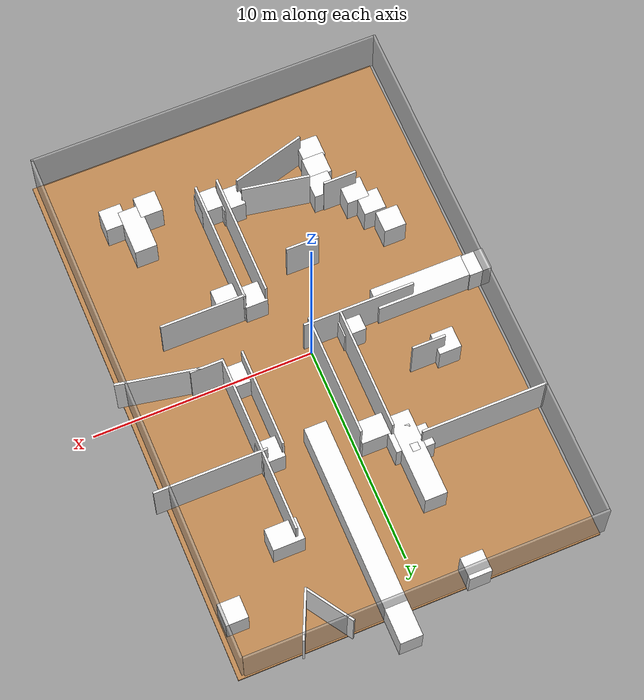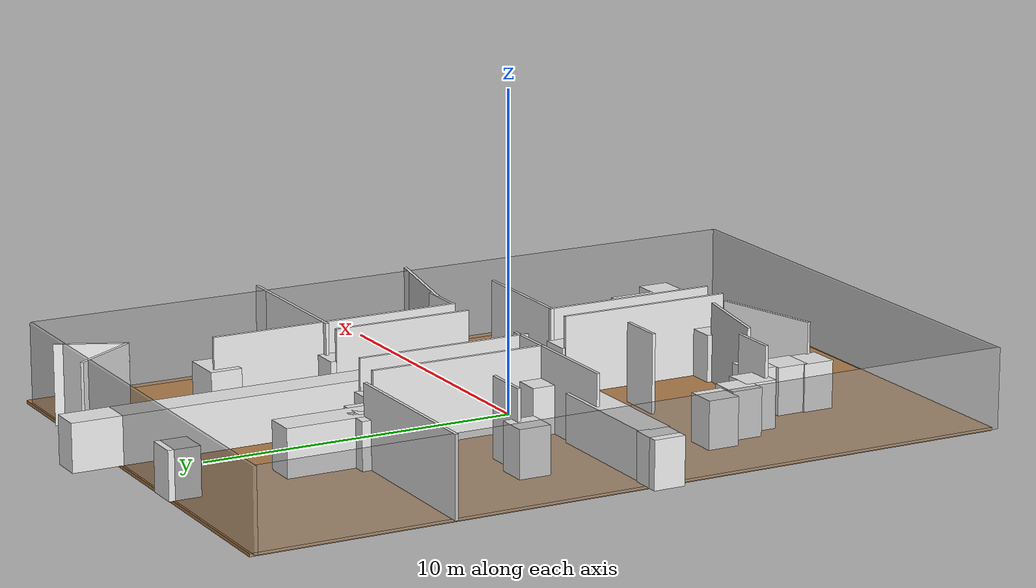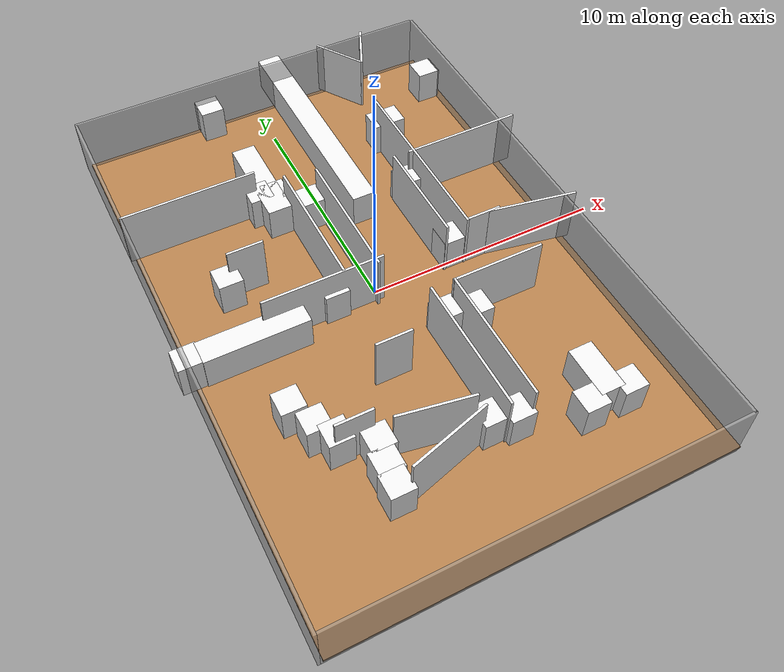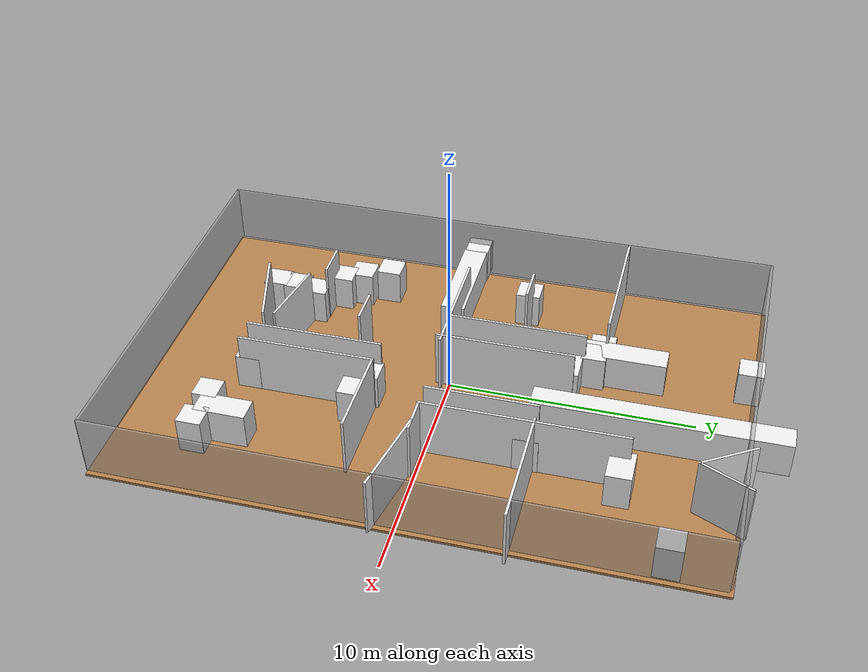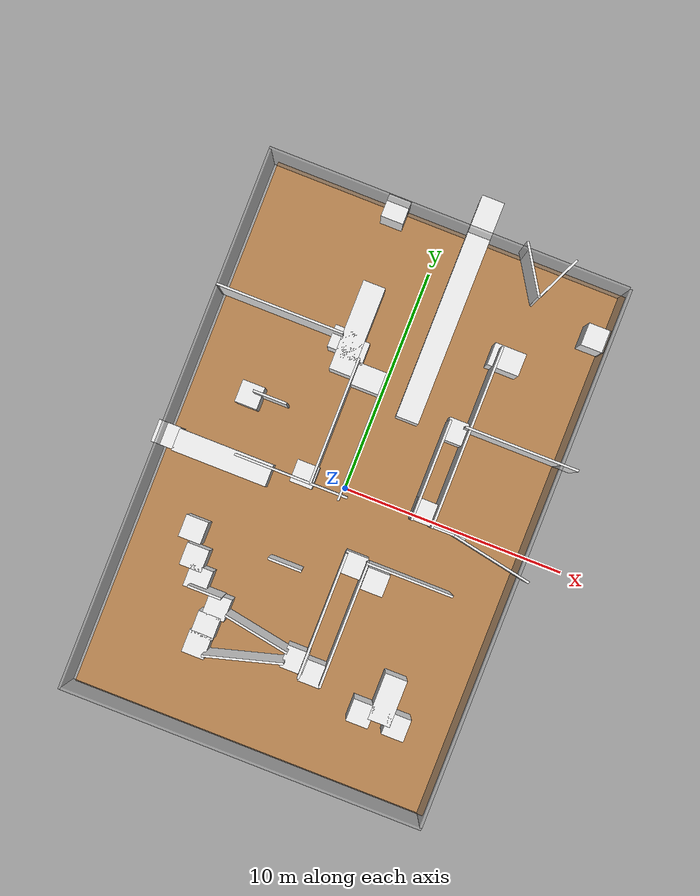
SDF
<sdf version="1.6">
 <world name="default">
  <light name="sun" type="directional">
   <pose>0 0 10 0 -0 0</pose>
   <diffuse>0.8 0.8 0.8 1</diffuse>
   <specular>0.2 0.2 0.2 1</specular>
   <attenuation>
    <range>1000</range>
    <constant>0.9</constant>
    <linear>0.01</linear>
    <quadratic>0.001</quadratic>
   </attenuation>
   <direction>-0.5 0.1 -0.9</direction>
  </light>
  <physics name="default_physics" default="0" type="ode">
   <real_time_update_rate>1000</real_time_update_rate>
   <max_step_size>0.001</max_step_size>
   <real_time_factor>1</real_time_factor>
   <ode>
    <solver>
     <type>quick</type>
     <iters>150</iters>
     <precon_iters>0</precon_iters>
     <sor>1.4</sor>
     <use_dynamic_moi_rescaling>1</use_dynamic_moi_rescaling>
    </solver>
    <constraints>
     <cfm>1e-05</cfm>
     <erp>0.2</erp>
     <contact_max_correcting_vel>2000</contact_max_correcting_vel>
     <contact_surface_layer>0.01</contact_surface_layer>
    </constraints>
   </ode>
  </physics>
  <model name="box_1">
   <pose>0.05 -12.05 1.25 0 -0 0</pose>
   <static>1</static>
   <link name="link">
    <collision name="collision"><geometry><box><size>16.1 0.1 2.5</size></box></geometry></collision>
    <visual name="visual">
     <geometry><box><size>16.1 0.1 2.5</size></box></geometry>
     <material>
      <script><name>Gazebo/GreyTransparent</name><uri>file://media/materials/scripts/gazebo.material</uri></script>
     </material>
    </visual>
   </link>
  </model>
  <model name="box_2">
   <pose>8.06174 -0.026302 1.25 0 -0 0</pose>
   <static>1</static>
   <link name="link">
    <collision name="collision"><geometry><box><size>0.1 24.1 2.5</size></box></geometry></collision>
    <visual name="visual">
     <geometry><box><size>0.1 24.1 2.5</size></box></geometry>
     <material>
      <script><name>Gazebo/GreyTransparent</name><uri>file://media/materials/scripts/gazebo.material</uri></script>
     </material>
    </visual>
   </link>
  </model>
  <model name="box_3">
   <pose>-0.05 12.05 1.25 0 -0 0</pose>
   <static>1</static>
   <link name="link">
    <collision name="collision"><geometry><box><size>16.1 0.1 2.5</size></box></geometry></collision>
    <visual name="visual">
     <geometry><box><size>16.1 0.1 2.5</size></box></geometry>
     <material>
      <script><name>Gazebo/GreyTransparent</name><uri>file://media/materials/scripts/gazebo.material</uri></script>
     </material>
    </visual>
   </link>
  </model>
  <model name="box_4">
   <pose>-8.05 -0.05 1.25 0 -0 0</pose>
   <static>1</static>
   <link name="link">
    <collision name="collision"><geometry><box><size>0.1 24.1 2.5</size></box></geometry></collision>
    <visual name="visual">
     <geometry><box><size>0.1 24.1 2.5</size></box></geometry>
     <material>
      <script><name>Gazebo/GreyTransparent</name><uri>file://media/materials/scripts/gazebo.material</uri></script>
     </material>
    </visual>
   </link>
  </model>
  <model name="box_5">
   <pose>0.210514 0.059799 -0.05 0 -0 0</pose>
   <static>1</static>
   <link name="link">
    <collision name="collision"><geometry><box><size>16.2 24.2 0.1</size></box></geometry></collision>
    <visual name="visual">
     <geometry><box><size>16.2 24.2 0.1</size></box></geometry>
     <material>
      <script><name>Gazebo/WoodFloor</name><uri>file://media/materials/scripts/gazebo.material</uri></script>
     </material>
    </visual>
   </link>
  </model>
  <gravity>0 0 -9.8066</gravity>
  <magnetic_field>6e-06 2.3e-05 -4.2e-05</magnetic_field>
  <atmosphere type="adiabatic"/>
  <scene><ambient>0.4 0.4 0.4 1</ambient><background>0.7 0.7 0.7 1</background><shadows>1</shadows></scene>
  <spherical_coordinates>
   <surface_model>EARTH_WGS84</surface_model>
   <latitude_deg>0</latitude_deg>
   <longitude_deg>0</longitude_deg>
   <elevation>0</elevation>
   <heading_deg>0</heading_deg>
  </spherical_coordinates>
  <model name="box_8_clone">
   <pose>6.73576 -0.524414 1.25 0 0 -0.191358</pose>
   <static>1</static>
   <link name="link">
    <collision name="collision"><geometry><box><size>3.67087 0.1 2.5</size></box></geometry></collision>
    <visual name="visual">
     <geometry><box><size>3.67087 0.1 2.5</size></box></geometry>
     <material>
      <script><name>Gazebo/White</name><uri>file://media/materials/scripts/gazebo.material</uri></script>
     </material>
    </visual>
   </link>
  </model>
  <model name="box_9_clone_clone_0">
   <pose>-3.46298 -8.44795 0.75 0 -0 0</pose>
   <static>1</static>
   <link name="link">
    <collision name="collision"><geometry><box><size>1 1 1.5</size></box></geometry></collision>
    <visual name="visual">
     <geometry><box><size>1 1 1.5</size></box></geometry>
     <material>
      <script><name>Gazebo/White</name><uri>file://media/materials/scripts/gazebo.material</uri></script>
     </material>
    </visual>
   </link>
  </model>
  <model name="box_9_clone_clone_1">
   <pose>-3.40186 -7.56359 0.75 0 -0 0</pose>
   <static>1</static>
   <link name="link">
    <collision name="collision"><geometry><box><size>1 1 1.5</size></box></geometry></collision>
    <visual name="visual">
     <geometry><box><size>1 1 1.5</size></box></geometry>
     <material>
      <script><name>Gazebo/White</name><uri>file://media/materials/scripts/gazebo.material</uri></script>
     </material>
    </visual>
   </link>
  </model>
  <model name="box_9_clone_clone_2">
   <pose>-3.23885 -6.64819 0.75 0 -0 0</pose>
   <static>1</static>
   <link name="link">
    <collision name="collision"><geometry><box><size>1 1 1.5</size></box></geometry></collision>
    <visual name="visual">
     <geometry><box><size>1 1 1.5</size></box></geometry>
     <material>
      <script><name>Gazebo/White</name><uri>file://media/materials/scripts/gazebo.material</uri></script>
     </material>
    </visual>
   </link>
  </model>
  <model name="box_9_clone_clone_3">
   <pose>5.68831 -8.62591 0.75 0 -0 0</pose>
   <static>1</static>
   <link name="link">
    <collision name="collision"><geometry><box><size>1 1 1.5</size></box></geometry></collision>
    <visual name="visual">
     <geometry><box><size>1 1 1.5</size></box></geometry>
     <material>
      <script><name>Gazebo/White</name><uri>file://media/materials/scripts/gazebo.material</uri></script>
     </material>
    </visual>
   </link>
  </model>
  <model name="box_9_clone_clone_4">
   <pose>4.92737 -7.69876 0.75 0 -0 0</pose>
   <static>1</static>
   <link name="link">
    <collision name="collision"><geometry><box><size>1 2.09227 1.5</size></box></geometry></collision>
    <visual name="visual">
     <geometry><box><size>1 2.09227 1.5</size></box></geometry>
     <material>
      <script><name>Gazebo/White</name><uri>file://media/materials/scripts/gazebo.material</uri></script>
     </material>
    </visual>
   </link>
  </model>
  <model name="box_9_clone_clone_7">
   <pose>-2.40815 5.82285 0.75 0 -0 0</pose>
   <static>1</static>
   <link name="link">
    <collision name="collision"><geometry><box><size>1 1 1.5</size></box></geometry></collision>
    <visual name="visual">
     <geometry><box><size>1 1 1.5</size></box></geometry>
     <material>
      <script><name>Gazebo/White</name><uri>file://media/materials/scripts/gazebo.material</uri></script>
     </material>
    </visual>
   </link>
  </model>
  <model name="box_9_clone_clone_8">
   <pose>-2 6.49358 0.75 0 -0 0</pose>
   <static>1</static>
   <link name="link">
    <collision name="collision"><geometry><box><size>1 4.01205 1.5</size></box></geometry></collision>
    <visual name="visual">
     <geometry><box><size>1 4.01205 1.5</size></box></geometry>
     <material>
      <script><name>Gazebo/White</name><uri>file://media/materials/scripts/gazebo.material</uri></script>
     </material>
    </visual>
   </link>
  </model>
  <model name="box_8_clone_clone_13_clone_clone_clone_clone_0">
   <pose>3.88443 -2.57138 1.25 0 -0 0</pose>
   <static>1</static>
   <link name="link">
    <collision name="collision"><geometry><box><size>3.86211 0.1 2.5</size></box></geometry></collision>
    <visual name="visual">
     <geometry><box><size>3.86211 0.1 2.5</size></box></geometry>
     <material>
      <script><name>Gazebo/White</name><uri>file://media/materials/scripts/gazebo.material</uri></script>
     </material>
    </visual>
   </link>
  </model>
  <model name="box_8_clone_clone_11_clone">
   <pose>-1.1954 -3.87817 1.25 0 -0 0</pose>
   <static>1</static>
   <link name="link">
    <collision name="collision"><geometry><box><size>1.5 0.1 2.5</size></box></geometry></collision>
    <visual name="visual">
     <geometry><box><size>1.5 0.1 2.5</size></box></geometry>
     <material>
      <script><name>Gazebo/White</name><uri>file://media/materials/scripts/gazebo.material</uri></script>
     </material>
    </visual>
   </link>
  </model>
  <model name="box_8_clone_clone_4_clone_2">
   <pose>-4.30694 2.39293 1.25 0 -0 0</pose>
   <static>1</static>
   <link name="link">
    <collision name="collision"><geometry><box><size>1.5 0.1 2.5</size></box></geometry></collision>
    <visual name="visual">
     <geometry><box><size>1.5 0.1 2.5</size></box></geometry>
     <material>
      <script><name>Gazebo/White</name><uri>file://media/materials/scripts/gazebo.material</uri></script>
     </material>
    </visual>
   </link>
  </model>
  <model name="box_9_clone_clone_7_clone">
   <pose>-5.21616 2.23106 0.75 0 -0 0</pose>
   <static>1</static>
   <link name="link">
    <collision name="collision"><geometry><box><size>1 1 1.5</size></box></geometry></collision>
    <visual name="visual">
     <geometry><box><size>1 1 1.5</size></box></geometry>
     <material>
      <script><name>Gazebo/White</name><uri>file://media/materials/scripts/gazebo.material</uri></script>
     </material>
    </visual>
   </link>
  </model>
  <model name="box_9_clone_clone_7_clone_clone">
   <pose>-7.89766 -0.627489 0.75 0 -0 0</pose>
   <static>1</static>
   <link name="link">
    <collision name="collision"><geometry><box><size>1 1 1.5</size></box></geometry></collision>
    <visual name="visual">
     <geometry><box><size>1 1 1.5</size></box></geometry>
     <material>
      <script><name>Gazebo/White</name><uri>file://media/materials/scripts/gazebo.material</uri></script>
     </material>
    </visual>
   </link>
  </model>
  <model name="box_9_clone_clone_7_clone_clone_3">
   <pose>-5.3619 -3.95424 0.75 0 -0 0</pose>
   <static>1</static>
   <link name="link">
    <collision name="collision"><geometry><box><size>1 1 1.5</size></box></geometry></collision>
    <visual name="visual">
     <geometry><box><size>1 1 1.5</size></box></geometry>
     <material>
      <script><name>Gazebo/White</name><uri>file://media/materials/scripts/gazebo.material</uri></script>
     </material>
    </visual>
   </link>
  </model>
  <model name="box_9_clone_clone_7_clone_clone_4">
   <pose>-4.89443 -5.04481 0.75 0 -0 0</pose>
   <static>1</static>
   <link name="link">
    <collision name="collision"><geometry><box><size>1 1 1.5</size></box></geometry></collision>
    <visual name="visual">
     <geometry><box><size>1 1 1.5</size></box></geometry>
     <material>
      <script><name>Gazebo/White</name><uri>file://media/materials/scripts/gazebo.material</uri></script>
     </material>
    </visual>
   </link>
  </model>
  <model name="box_9_clone_clone_7_clone_clone_5">
   <pose>-4.42171 -5.82067 0.75 0 -0 0</pose>
   <static>1</static>
   <link name="link">
    <collision name="collision"><geometry><box><size>1 1 1.5</size></box></geometry></collision>
    <visual name="visual">
     <geometry><box><size>1 1 1.5</size></box></geometry>
     <material>
      <script><name>Gazebo/White</name><uri>file://media/materials/scripts/gazebo.material</uri></script>
     </material>
    </visual>
   </link>
  </model>
  <model name="box_8_clone_clone_4_clone_2_clone">
   <pose>-3.89284 -6.16269 1.25 0 -0 0</pose>
   <static>1</static>
   <link name="link">
    <collision name="collision"><geometry><box><size>1.5 0.1 2.5</size></box></geometry></collision>
    <visual name="visual">
     <geometry><box><size>1.5 0.1 2.5</size></box></geometry>
     <material>
      <script><name>Gazebo/White</name><uri>file://media/materials/scripts/gazebo.material</uri></script>
     </material>
    </visual>
   </link>
  </model>
  <model name="box_8_clone_clone_4_clone_0_clone_0">
   <pose>-1.24411 -7.00083 1.25 0 0 -0.176905</pose>
   <static>1</static>
   <link name="link">
    <collision name="collision"><geometry><box><size>3.01878 0.1 2.5</size></box></geometry></collision>
    <visual name="visual">
     <geometry><box><size>3.01878 0.1 2.5</size></box></geometry>
     <material>
      <script><name>Gazebo/White</name><uri>file://media/materials/scripts/gazebo.material</uri></script>
     </material>
    </visual>
   </link>
  </model>
  <model name="box_8_clone_clone_4_clone_0_clone_1">
   <pose>-1.38698 -8.19189 1.25 0 -0 0.27336</pose>
   <static>1</static>
   <link name="link">
    <collision name="collision"><geometry><box><size>3.45267 0.1 2.5</size></box></geometry></collision>
    <visual name="visual">
     <geometry><box><size>3.45267 0.1 2.5</size></box></geometry>
     <material>
      <script><name>Gazebo/White</name><uri>file://media/materials/scripts/gazebo.material</uri></script>
     </material>
    </visual>
   </link>
  </model>
  <model name="box_9_clone_clone_5_clone_2_clone_0">
   <pose>4.37795 7.57531 0.75 0 -0 0</pose>
   <static>1</static>
   <link name="link">
    <collision name="collision"><geometry><box><size>1.40826 1 1.5</size></box></geometry></collision>
    <visual name="visual">
     <geometry><box><size>1.40826 1 1.5</size></box></geometry>
     <material>
      <script><name>Gazebo/White</name><uri>file://media/materials/scripts/gazebo.material</uri></script>
     </material>
    </visual>
   </link>
  </model>
  <model name="box_9_clone_clone_5_clone_2_clone_0_clone">
   <pose>0.652057 -7.5435 0.75 0 -0 0</pose>
   <static>1</static>
   <link name="link">
    <collision name="collision"><geometry><box><size>1 1 1.5</size></box></geometry></collision>
    <visual name="visual">
     <geometry><box><size>1 1 1.5</size></box></geometry>
     <material>
      <script><name>Gazebo/White</name><uri>file://media/materials/scripts/gazebo.material</uri></script>
     </material>
    </visual>
   </link>
  </model>
  <model name="box_9_clone_clone_5_clone_2_clone_0_clone_0">
   <pose>4.08001 -8.6431 0.75 0 -0 0</pose>
   <static>1</static>
   <link name="link">
    <collision name="collision"><geometry><box><size>1 1 1.5</size></box></geometry></collision>
    <visual name="visual">
     <geometry><box><size>1 1 1.5</size></box></geometry>
     <material>
      <script><name>Gazebo/White</name><uri>file://media/materials/scripts/gazebo.material</uri></script>
     </material>
    </visual>
   </link>
  </model>
  <model name="box_6_clone_clone_4_clone">
   <pose>3.95719 11.3352 1.25 0 -0 0.571653</pose>
   <static>1</static>
   <link name="link">
    <collision name="collision"><geometry><box><size>0.1 2.35194 2.5</size></box></geometry></collision>
    <visual name="visual">
     <geometry><box><size>0.1 2.35194 2.5</size></box></geometry>
     <material>
      <script><name>Gazebo/White</name><uri>file://media/materials/scripts/gazebo.material</uri></script>
     </material>
    </visual>
   </link>
  </model>
  <model name="box_9_clone_clone_7_clone_clone_clone">
   <pose>-5.32159 -0.673379 0.75 0 -0 0</pose>
   <static>1</static>
   <link name="link">
    <collision name="collision"><geometry><box><size>4.25949 1 1.5</size></box></geometry></collision>
    <visual name="visual">
     <geometry><box><size>4.25949 1 1.5</size></box></geometry>
     <material>
      <script><name>Gazebo/White</name><uri>file://media/materials/scripts/gazebo.material</uri></script>
     </material>
    </visual>
   </link>
  </model>
  <model name="box_8_clone_clone_3_clone">
   <pose>6.25131 4.20674 1.25 0 -0 0</pose>
   <static>1</static>
   <link name="link">
    <collision name="collision"><geometry><box><size>5.04273 0.1 2.5</size></box></geometry></collision>
    <visual name="visual">
     <geometry><box><size>5.04273 0.1 2.5</size></box></geometry>
     <material>
      <script><name>Gazebo/White</name><uri>file://media/materials/scripts/gazebo.material</uri></script>
     </material>
    </visual>
   </link>
  </model>
  <model name="box_9_clone_clone_5_clone_2_clone_clone_clone">
   <pose>7.56133 9.79509 0.75 0 -0 0</pose>
   <static>1</static>
   <link name="link">
    <collision name="collision"><geometry><box><size>1 1 1.5</size></box></geometry></collision>
    <visual name="visual">
     <geometry><box><size>1 1 1.5</size></box></geometry>
     <material>
      <script><name>Gazebo/White</name><uri>file://media/materials/scripts/gazebo.material</uri></script>
     </material>
    </visual>
   </link>
  </model>
  <model name="box_9_clone_clone_7_clone_0">
   <pose>1.37825 8.66257 0.75 0 -0 0</pose>
   <static>1</static>
   <link name="link">
    <collision name="collision"><geometry><box><size>1 10.045 1.5</size></box></geometry></collision>
    <visual name="visual">
     <geometry><box><size>1 10.045 1.5</size></box></geometry>
     <material>
      <script><name>Gazebo/White</name><uri>file://media/materials/scripts/gazebo.material</uri></script>
     </material>
    </visual>
   </link>
  </model>
  <model name="box_8_clone_clone_3_clone_clone">
   <pose>-5.25901 5.98168 1.25 0 -0 0</pose>
   <static>1</static>
   <link name="link">
    <collision name="collision"><geometry><box><size>5.64962 0.1 2.5</size></box></geometry></collision>
    <visual name="visual">
     <geometry><box><size>5.64962 0.1 2.5</size></box></geometry>
     <material>
      <script><name>Gazebo/White</name><uri>file://media/materials/scripts/gazebo.material</uri></script>
     </material>
    </visual>
   </link>
  </model>
  <model name="box_9_clone_clone_9_clone">
   <pose>-2.30467 11.7929 0.75 0 -0 0</pose>
   <static>1</static>
   <link name="link">
    <collision name="collision"><geometry><box><size>1 1 1.5</size></box></geometry></collision>
    <visual name="visual">
     <geometry><box><size>1 1 1.5</size></box></geometry>
     <material>
      <script><name>Gazebo/White</name><uri>file://media/materials/scripts/gazebo.material</uri></script>
     </material>
    </visual>
   </link>
  </model>
  <model name="box_9_clone_clone_7_clone_1">
   <pose>-1.75575 5.59579 0.75 0 -0 0</pose>
   <static>1</static>
   <link name="link">
    <collision name="collision"><geometry><box><size>1 1 1.5</size></box></geometry></collision>
    <visual name="visual">
     <geometry><box><size>1 1 1.5</size></box></geometry>
     <material>
      <script><name>Gazebo/White</name><uri>file://media/materials/scripts/gazebo.material</uri></script>
     </material>
    </visual>
   </link>
  </model>
  <model name="box_6_clone_clone_3_clone_clone_clone">
   <pose>-1.43846 2.46186 1.25 0 -0 0</pose>
   <static>1</static>
   <link name="link">
    <collision name="collision"><geometry><box><size>0.1 5.60332 2.5</size></box></geometry></collision>
    <visual name="visual">
     <geometry><box><size>0.1 5.60332 2.5</size></box></geometry>
     <material>
      <script><name>Gazebo/White</name><uri>file://media/materials/scripts/gazebo.material</uri></script>
     </material>
    </visual>
   </link>
  </model>
  <model name="box_6_clone_clone_3_clone_clone_clone_clone">
   <pose>3.95757 3.81707 1.25 0 -0 0</pose>
   <static>1</static>
   <link name="link">
    <collision name="collision"><geometry><box><size>0.1 8.11445 2.5</size></box></geometry></collision>
    <visual name="visual">
     <geometry><box><size>0.1 8.11445 2.5</size></box></geometry>
     <material>
      <script><name>Gazebo/White</name><uri>file://media/materials/scripts/gazebo.material</uri></script>
     </material>
    </visual>
   </link>
  </model>
  <model name="box_6_clone_clone_3_clone_clone_clone_clone_0">
   <pose>2.0182 -5.31678 1.25 0 -0 0</pose>
   <static>1</static>
   <link name="link">
    <collision name="collision"><geometry><box><size>0.1 5.60332 2.5</size></box></geometry></collision>
    <visual name="visual">
     <geometry><box><size>0.1 5.60332 2.5</size></box></geometry>
     <material>
      <script><name>Gazebo/White</name><uri>file://media/materials/scripts/gazebo.material</uri></script>
     </material>
    </visual>
   </link>
  </model>
  <model name="box_6_clone_clone_3_clone_clone_clone_clone_0_clone">
   <pose>1.04356 -5.29976 1.25 0 -0 0</pose>
   <static>1</static>
   <link name="link">
    <collision name="collision"><geometry><box><size>0.1 5.60332 2.5</size></box></geometry></collision>
    <visual name="visual">
     <geometry><box><size>0.1 5.60332 2.5</size></box></geometry>
     <material>
      <script><name>Gazebo/White</name><uri>file://media/materials/scripts/gazebo.material</uri></script>
     </material>
    </visual>
   </link>
  </model>
  <model name="box_9_clone_clone_5_clone_2_clone_0_clone_clone">
   <pose>1.51029 -2.90303 0.75 0 -0 0</pose>
   <static>1</static>
   <link name="link">
    <collision name="collision"><geometry><box><size>1 1 1.5</size></box></geometry></collision>
    <visual name="visual">
     <geometry><box><size>1 1 1.5</size></box></geometry>
     <material>
      <script><name>Gazebo/White</name><uri>file://media/materials/scripts/gazebo.material</uri></script>
     </material>
    </visual>
   </link>
  </model>
  <model name="box_8_clone_clone">
   <pose>4.67136 -0.169302 1.25 0 -0 0</pose>
   <static>1</static>
   <link name="link">
    <collision name="collision"><geometry><box><size>1.5 0.1 2.5</size></box></geometry></collision>
    <visual name="visual">
     <geometry><box><size>1.5 0.1 2.5</size></box></geometry>
     <material>
      <script><name>Gazebo/White</name><uri>file://media/materials/scripts/gazebo.material</uri></script>
     </material>
    </visual>
   </link>
  </model>
  <model name="box_9_clone_clone_7_clone_clone_0">
   <pose>-1.82358 -0.068042 0.75 0 -0 0</pose>
   <static>1</static>
   <link name="link">
    <collision name="collision"><geometry><box><size>1 1 1.5</size></box></geometry></collision>
    <visual name="visual">
     <geometry><box><size>1 1 1.5</size></box></geometry>
     <material>
      <script><name>Gazebo/White</name><uri>file://media/materials/scripts/gazebo.material</uri></script>
     </material>
    </visual>
   </link>
  </model>
  <model name="box_9_clone_clone_5_clone_2_clone_0_clone_0_clone">
   <pose>1.56966 -7.808 0.75 0 -0 0</pose>
   <static>1</static>
   <link name="link">
    <collision name="collision"><geometry><box><size>1 1 1.5</size></box></geometry></collision>
    <visual name="visual">
     <geometry><box><size>1 1 1.5</size></box></geometry>
     <material>
      <script><name>Gazebo/White</name><uri>file://media/materials/scripts/gazebo.material</uri></script>
     </material>
    </visual>
   </link>
  </model>
  <model name="box_6_clone_clone_3_clone_clone_clone_clone_clone_clone">
   <pose>3.05375 2.01083 1.25 0 -0 0</pose>
   <static>1</static>
   <link name="link">
    <collision name="collision"><geometry><box><size>0.1 4.48724 2.5</size></box></geometry></collision>
    <visual name="visual">
     <geometry><box><size>0.1 4.48724 2.5</size></box></geometry>
     <material>
      <script><name>Gazebo/White</name><uri>file://media/materials/scripts/gazebo.material</uri></script>
     </material>
    </visual>
   </link>
  </model>
  <model name="box_9_clone_clone_5_clone_2_clone_clone_clone_0_clone">
   <pose>3.53034 3.94247 0.75 0 -0 0</pose>
   <static>1</static>
   <link name="link">
    <collision name="collision"><geometry><box><size>1 1 1.5</size></box></geometry></collision>
    <visual name="visual">
     <geometry><box><size>1 1 1.5</size></box></geometry>
     <material>
      <script><name>Gazebo/White</name><uri>file://media/materials/scripts/gazebo.material</uri></script>
     </material>
    </visual>
   </link>
  </model>
  <model name="box_9_clone_clone_5_clone_2_clone_clone_clone_0_clone_clone">
   <pose>3.50283 0.292409 0.75 0 -0 0</pose>
   <static>1</static>
   <link name="link">
    <collision name="collision"><geometry><box><size>1 1 1.5</size></box></geometry></collision>
    <visual name="visual">
     <geometry><box><size>1 1 1.5</size></box></geometry>
     <material>
      <script><name>Gazebo/White</name><uri>file://media/materials/scripts/gazebo.material</uri></script>
     </material>
    </visual>
   </link>
  </model>
  <model name="box_6_clone_clone_3_clone_clone_clone_clone_1">
   <pose>-0.107646 2.21646 1.25 0 -0 0.001144</pose>
   <static>1</static>
   <link name="link">
    <collision name="collision"><geometry><box><size>0.1 5.60332 2.5</size></box></geometry></collision>
    <visual name="visual">
     <geometry><box><size>0.1 5.60332 2.5</size></box></geometry>
     <material>
      <script><name>Gazebo/White</name><uri>file://media/materials/scripts/gazebo.material</uri></script>
     </material>
    </visual>
   </link>
  </model>
  <model name="box_9_clone_clone_8_clone_0_clone">
   <pose>-0.786916 4.69142 0.75 0 -0 0</pose>
   <static>1</static>
   <link name="link">
    <collision name="collision"><geometry><box><size>1.34488 1 1.5</size></box></geometry></collision>
    <visual name="visual">
     <geometry><box><size>1.34488 1 1.5</size></box></geometry>
     <material>
      <script><name>Gazebo/White</name><uri>file://media/materials/scripts/gazebo.material</uri></script>
     </material>
    </visual>
   </link>
  </model>
  <model name="box_8_clone_clone_3_clone_clone_clone">
   <pose>-2.2916 -0.339317 1.25 0 -0 0</pose>
   <static>1</static>
   <link name="link">
    <collision name="collision"><geometry><box><size>5.03031 0.1 2.5</size></box></geometry></collision>
    <visual name="visual">
     <geometry><box><size>5.03031 0.1 2.5</size></box></geometry>
     <material>
      <script><name>Gazebo/White</name><uri>file://media/materials/scripts/gazebo.material</uri></script>
     </material>
    </visual>
   </link>
  </model>
  <audio><device>default</device></audio>
  <model name="box_6_clone_clone_4_clone_clone">
   <pose>5.05665 11.3213 1.25 0 0 -0.428818</pose>
   <static>1</static>
   <link name="link">
    <collision name="collision"><geometry><box><size>0.1 2.23585 2.5</size></box></geometry></collision>
    <visual name="visual">
     <geometry><box><size>0.1 2.23585 2.5</size></box></geometry>
     <material>
      <script><name>Gazebo/White</name><uri>file://media/materials/scripts/gazebo.material</uri></script>
     </material>
    </visual>
   </link>
  </model>
  <model name="box_9_clone_clone_5_clone_2_clone_0_clone_0_clone_0">
   <pose>2.62497 -3.23808 0.75 0 -0 0</pose>
   <static>1</static>
   <link name="link">
    <collision name="collision"><geometry><box><size>1 1 1.5</size></box></geometry></collision>
    <visual name="visual">
     <geometry><box><size>1 1 1.5</size></box></geometry>
     <material>
      <script><name>Gazebo/White</name><uri>file://media/materials/scripts/gazebo.material</uri></script>
     </material>
    </visual>
   </link>
  </model>
 </world>
</sdf>
